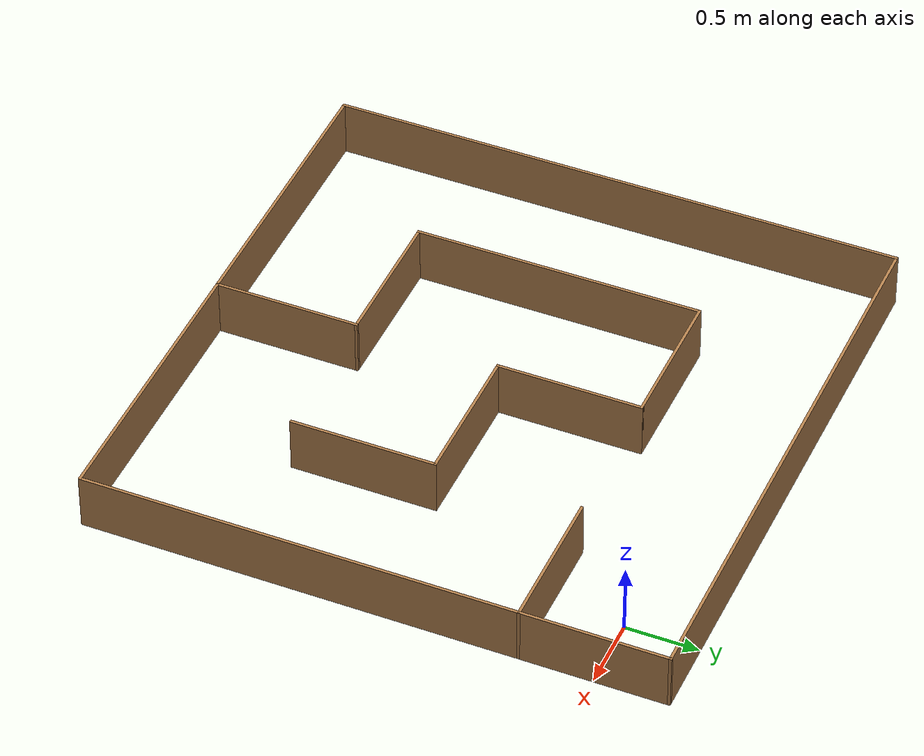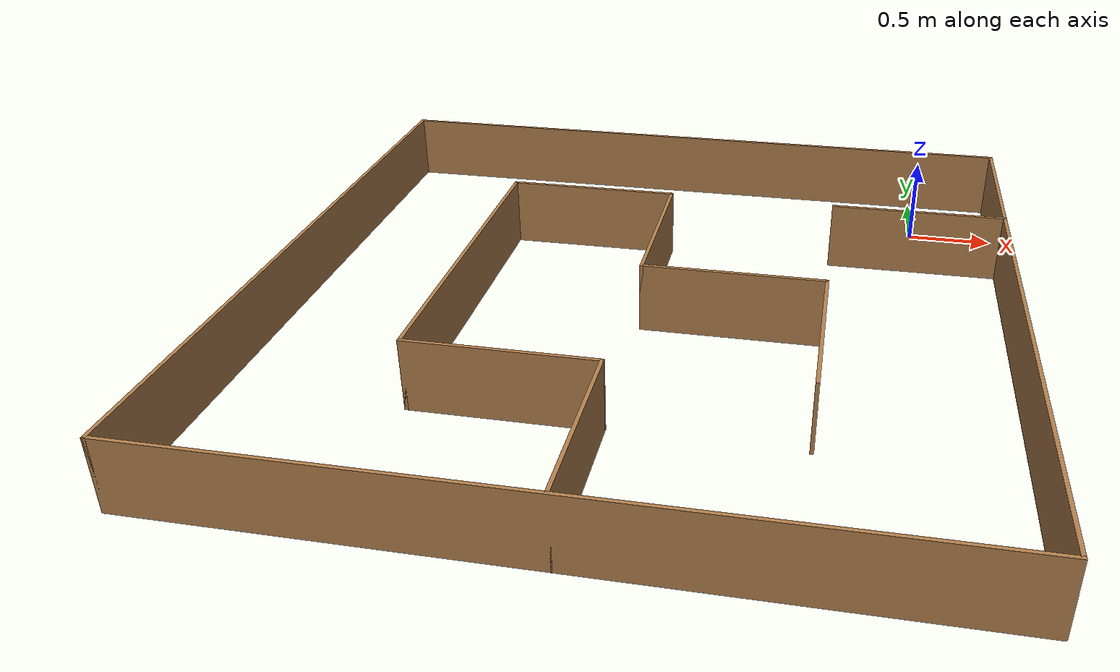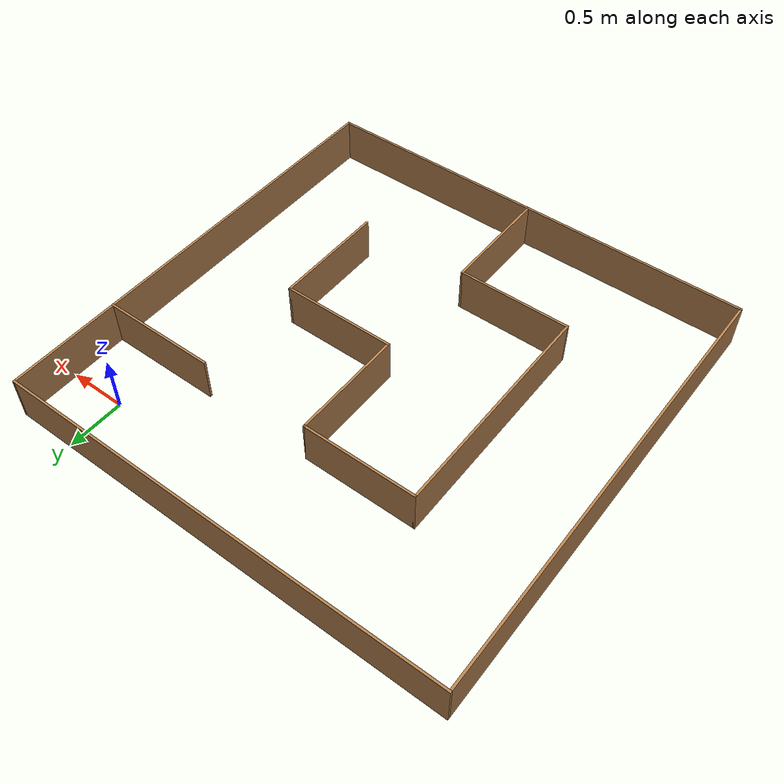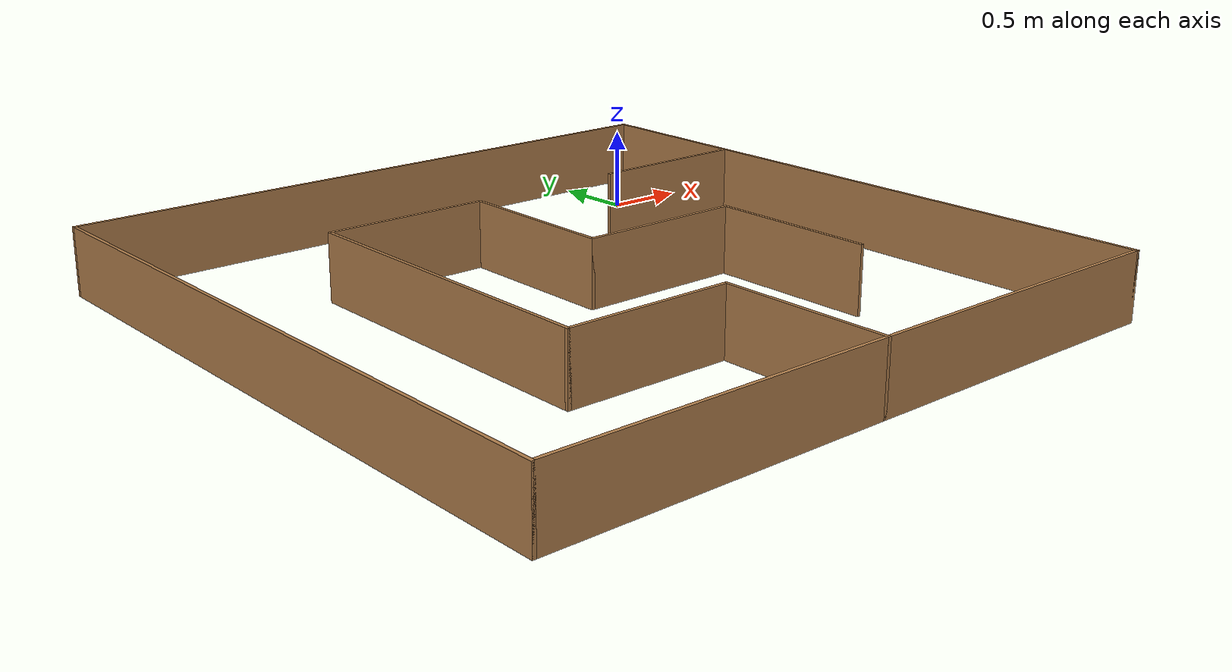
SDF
<?xml version='1.0'?>
<sdf version='1.7'>
  <model name='maze_24a'>
    <pose>-1.5 -1.5 0 0 -0 0</pose>
    <link name='Wall_0'>
      <collision name='Wall_0_Collision'>
        <geometry>
          <box>
            <size>4.02 0.02 0.4</size>
          </box>
        </geometry>
        <pose>0 0 0.2 0 -0 0</pose>
      </collision>
      <visual name='Wall_0_Visual'>
        <pose>0 0 0.2 0 -0 0</pose>
        <geometry>
          <box>
            <size>4.02 0.02 0.4</size>
          </box>
        </geometry>
        <material>
          <script>
            <uri>file://media/materials/scripts/gazebo.material</uri>
            <name>Gazebo/Wood</name>
          </script>
          <ambient>1 1 1 1</ambient>
        </material>
        <meta>
          <layer>0</layer>
        </meta>
      </visual>
      <pose>0 2 0 0 -0 3.14159</pose>
    </link>
    <link name='Wall_11'>
      <collision name='Wall_11_Collision'>
        <geometry>
          <box>
            <size>1.02 0.02 0.4</size>
          </box>
        </geometry>
        <pose>0 0 0.2 0 -0 0</pose>
      </collision>
      <visual name='Wall_11_Visual'>
        <pose>0 0 0.2 0 -0 0</pose>
        <geometry>
          <box>
            <size>1.02 0.02 0.4</size>
          </box>
        </geometry>
        <material>
          <script>
            <uri>file://media/materials/scripts/gazebo.material</uri>
            <name>Gazebo/Wood</name>
          </script>
          <ambient>1 1 1 1</ambient>
        </material>
        <meta>
          <layer>0</layer>
        </meta>
      </visual>
      <pose>-0.5 -1 0 0 -0 0</pose>
    </link>
    <link name='Wall_13'>
      <collision name='Wall_13_Collision'>
        <geometry>
          <box>
            <size>2.02 0.02 0.4</size>
          </box>
        </geometry>
        <pose>0 0 0.2 0 -0 0</pose>
      </collision>
      <visual name='Wall_13_Visual'>
        <pose>0 0 0.2 0 -0 0</pose>
        <geometry>
          <box>
            <size>2.02 0.02 0.4</size>
          </box>
        </geometry>
        <material>
          <script>
            <uri>file://media/materials/scripts/gazebo.material</uri>
            <name>Gazebo/Wood</name>
          </script>
          <ambient>1 1 1 1</ambient>
        </material>
        <meta>
          <layer>0</layer>
        </meta>
      </visual>
      <pose>-1 0 0 0 -0 1.5708</pose>
    </link>
    <link name='Wall_15'>
      <collision name='Wall_15_Collision'>
        <geometry>
          <box>
            <size>1.02 0.02 0.4</size>
          </box>
        </geometry>
        <pose>0 0 0.2 0 -0 0</pose>
      </collision>
      <visual name='Wall_15_Visual'>
        <pose>0 0 0.2 0 -0 0</pose>
        <geometry>
          <box>
            <size>1.02 0.02 0.4</size>
          </box>
        </geometry>
        <material>
          <script>
            <uri>file://media/materials/scripts/gazebo.material</uri>
            <name>Gazebo/Wood</name>
          </script>
          <ambient>1 1 1 1</ambient>
        </material>
        <meta>
          <layer>0</layer>
        </meta>
      </visual>
      <pose>-0.5 1 0 0 -0 0</pose>
    </link>
    <link name='Wall_17'>
      <collision name='Wall_17_Collision'>
        <geometry>
          <box>
            <size>1.02 0.02 0.4</size>
          </box>
        </geometry>
        <pose>0 0 0.2 0 -0 0</pose>
      </collision>
      <visual name='Wall_17_Visual'>
        <pose>0 0 0.2 0 -0 0</pose>
        <geometry>
          <box>
            <size>1.02 0.02 0.4</size>
          </box>
        </geometry>
        <material>
          <script>
            <uri>file://media/materials/scripts/gazebo.material</uri>
            <name>Gazebo/Wood</name>
          </script>
          <ambient>1 1 1 1</ambient>
        </material>
        <meta>
          <layer>0</layer>
        </meta>
      </visual>
      <pose>0 0.5 0 0 -0 -1.5708</pose>
    </link>
    <link name='Wall_19'>
      <collision name='Wall_19_Collision'>
        <geometry>
          <box>
            <size>1.02 0.02 0.4</size>
          </box>
        </geometry>
        <pose>0 0 0.2 0 -0 0</pose>
      </collision>
      <visual name='Wall_19_Visual'>
        <pose>0 0 0.2 0 -0 0</pose>
        <geometry>
          <box>
            <size>1.02 0.02 0.4</size>
          </box>
        </geometry>
        <material>
          <script>
            <uri>file://media/materials/scripts/gazebo.material</uri>
            <name>Gazebo/Wood</name>
          </script>
          <ambient>1 1 1 1</ambient>
        </material>
        <meta>
          <layer>0</layer>
        </meta>
      </visual>
      <pose>0.5 0 0 0 -0 0</pose>
    </link>
    <link name='Wall_2'>
      <collision name='Wall_2_Collision'>
        <geometry>
          <box>
            <size>4.02 0.02 0.4</size>
          </box>
        </geometry>
        <pose>0 0 0.2 0 -0 0</pose>
      </collision>
      <visual name='Wall_2_Visual'>
        <pose>0 0 0.2 0 -0 0</pose>
        <geometry>
          <box>
            <size>4.02 0.02 0.4</size>
          </box>
        </geometry>
        <material>
          <script>
            <uri>file://media/materials/scripts/gazebo.material</uri>
            <name>Gazebo/Wood</name>
          </script>
          <ambient>1 1 1 1</ambient>
        </material>
        <meta>
          <layer>0</layer>
        </meta>
      </visual>
      <pose>-2 0 0 0 -0 -1.5708</pose>
    </link>
    <link name='Wall_21'>
      <collision name='Wall_21_Collision'>
        <geometry>
          <box>
            <size>1.02 0.02 0.4</size>
          </box>
        </geometry>
        <pose>0 0 0.2 0 -0 0</pose>
      </collision>
      <visual name='Wall_21_Visual'>
        <pose>0 0 0.2 0 -0 0</pose>
        <geometry>
          <box>
            <size>1.02 0.02 0.4</size>
          </box>
        </geometry>
        <material>
          <script>
            <uri>file://media/materials/scripts/gazebo.material</uri>
            <name>Gazebo/Wood</name>
          </script>
          <ambient>1 1 1 1</ambient>
        </material>
        <meta>
          <layer>0</layer>
        </meta>
      </visual>
      <pose>1 -0.5 0 0 -0 -1.5708</pose>
    </link>
    <link name='Wall_23'>
      <collision name='Wall_23_Collision'>
        <geometry>
          <box>
            <size>1.02 0.02 0.4</size>
          </box>
        </geometry>
        <pose>0 0 0.2 0 -0 0</pose>
      </collision>
      <visual name='Wall_23_Visual'>
        <pose>0 0 0.2 0 -0 0</pose>
        <geometry>
          <box>
            <size>1.02 0.02 0.4</size>
          </box>
        </geometry>
        <material>
          <script>
            <uri>file://media/materials/scripts/gazebo.material</uri>
            <name>Gazebo/Wood</name>
          </script>
          <ambient>1 1 1 1</ambient>
        </material>
        <meta>
          <layer>0</layer>
        </meta>
      </visual>
      <pose>1.5 1 0 0 -0 0</pose>
    </link>
    <link name='Wall_4'>
      <collision name='Wall_4_Collision'>
        <geometry>
          <box>
            <size>4.02 0.02 0.4</size>
          </box>
        </geometry>
        <pose>0 0 0.2 0 -0 0</pose>
      </collision>
      <visual name='Wall_4_Visual'>
        <pose>0 0 0.2 0 -0 0</pose>
        <geometry>
          <box>
            <size>4.02 0.02 0.4</size>
          </box>
        </geometry>
        <material>
          <script>
            <uri>file://media/materials/scripts/gazebo.material</uri>
            <name>Gazebo/Wood</name>
          </script>
          <ambient>1 1 1 1</ambient>
        </material>
        <meta>
          <layer>0</layer>
        </meta>
      </visual>
      <pose>0 -2 0 0 -0 0</pose>
    </link>
    <link name='Wall_6'>
      <collision name='Wall_6_Collision'>
        <geometry>
          <box>
            <size>4.02 0.02 0.4</size>
          </box>
        </geometry>
        <pose>0 0 0.2 0 -0 0</pose>
      </collision>
      <visual name='Wall_6_Visual'>
        <pose>0 0 0.2 0 -0 0</pose>
        <geometry>
          <box>
            <size>4.02 0.02 0.4</size>
          </box>
        </geometry>
        <material>
          <script>
            <uri>file://media/materials/scripts/gazebo.material</uri>
            <name>Gazebo/Wood</name>
          </script>
          <ambient>1 1 1 1</ambient>
        </material>
        <meta>
          <layer>0</layer>
        </meta>
      </visual>
      <pose>2 0 0 0 -0 1.5708</pose>
    </link>
    <link name='Wall_9'>
      <collision name='Wall_9_Collision'>
        <geometry>
          <box>
            <size>1.02 0.02 0.4</size>
          </box>
        </geometry>
        <pose>0 0 0.2 0 -0 0</pose>
      </collision>
      <visual name='Wall_9_Visual'>
        <pose>0 0 0.2 0 -0 0</pose>
        <geometry>
          <box>
            <size>1.02 0.02 0.4</size>
          </box>
        </geometry>
        <material>
          <script>
            <uri>file://media/materials/scripts/gazebo.material</uri>
            <name>Gazebo/Wood</name>
          </script>
          <ambient>1 1 1 1</ambient>
        </material>
        <meta>
          <layer>0</layer>
        </meta>
      </visual>
      <pose>0 -1.5 0 0 -0 1.5708</pose>
    </link>
    <static>1</static>
  </model>
</sdf>
